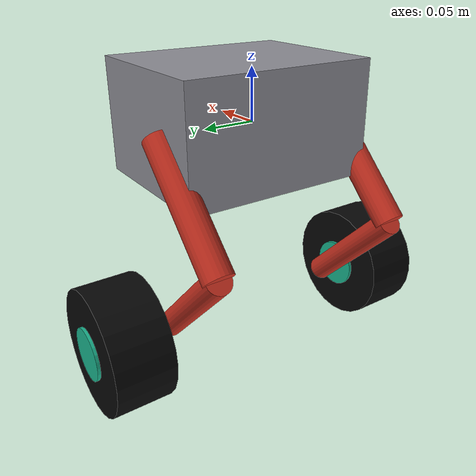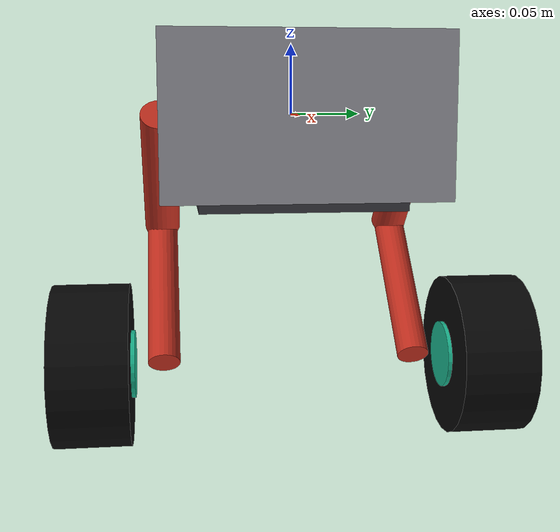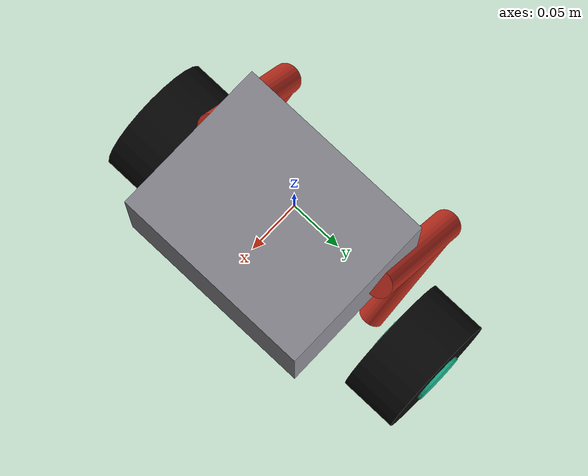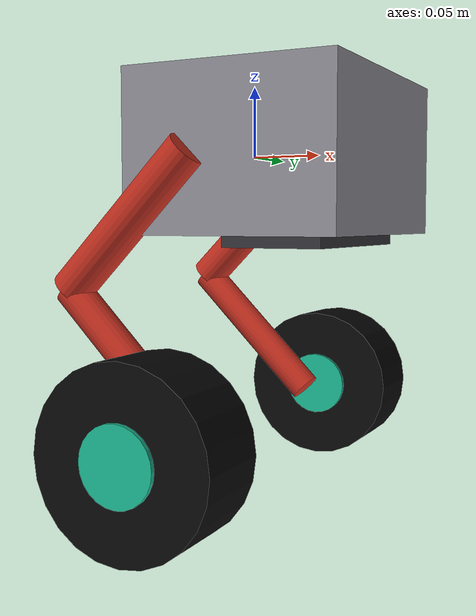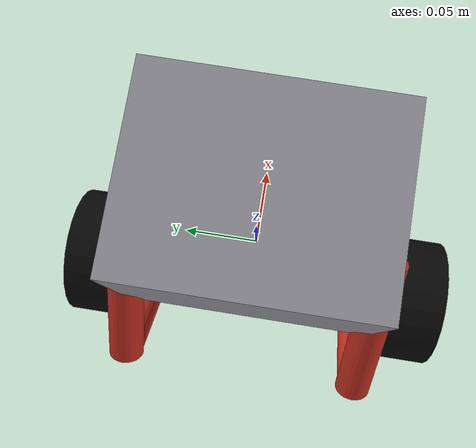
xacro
<?xml version="1.0"?>
<!-- SeBaJu_BOT(II): URDF conversion of SeBaJu_BOT(II).xml (MuJoCo). All frames, masses and joint axes match the MJCF. -->
<robot name="sebaju" xmlns:xacro="http://www.ros.org/wiki/xacro">

  <xacro:arg name="controllers_file" default="$(find sebaju_gazebo)/config/sebaju_controllers.yaml"/>

  <xacro:property name="seg" value="0.0919"/>
  <xacro:property name="leg_seg_length" value="0.13"/>
  <xacro:property name="hip_y" value="0.095"/>
  <xacro:property name="wheel_y" value="0.052"/>
  <xacro:property name="wheel_radius" value="0.06"/>
  <xacro:property name="wheel_length" value="0.056"/>
  <xacro:property name="hub_radius" value="0.025"/>
  <xacro:property name="hub_length" value="0.062"/>

  <xacro:property name="leg_damping" value="0.8"/>
  <xacro:property name="leg_effort" value="60.0"/>
  <!-- MuJoCo wheel motor: gear 18, ctrlrange [-1, 1] -> max 18 Nm -->
  <xacro:property name="wheel_effort" value="18.0"/>

  <material name="torso_mat"><color rgba="0.55 0.55 0.58 1"/></material>
  <material name="ballast_mat"><color rgba="0.20 0.20 0.22 1"/></material>
  <material name="leg_mat"><color rgba="0.75 0.18 0.12 1"/></material>
  <material name="wheel_mat"><color rgba="0.03 0.03 0.03 1"/></material>
  <material name="hub_mat"><color rgba="0.10 0.70 0.55 1"/></material>

  <!-- ===================== Torso ===================== -->
  <link name="base_link">
    <visual>
      <origin xyz="0.025 0 0"/>
      <geometry><box size="0.15 0.19 0.11"/></geometry>
      <material name="torso_mat"/>
    </visual>
    <collision>
      <origin xyz="0.025 0 0"/>
      <geometry><box size="0.15 0.19 0.11"/></geometry>
    </collision>
    <inertial>
      <origin xyz="0.025 0 0"/>
      <mass value="2.50"/>
      <inertia ixx="0.0100417" ixy="0" ixz="0" iyy="0.0072083" iyz="0" izz="0.0122083"/>
    </inertial>
  </link>

  <joint name="ballast_joint" type="fixed">
    <parent link="base_link"/>
    <child link="ballast_link"/>
    <origin xyz="0.045 0 -0.045"/>
  </joint>

  <link name="ballast_link">
    <visual>
      <geometry><box size="0.07 0.14 0.036"/></geometry>
      <material name="ballast_mat"/>
    </visual>
    <collision>
      <geometry><box size="0.07 0.14 0.036"/></geometry>
    </collision>
    <inertial>
      <mass value="0.35"/>
      <inertia ixx="0.00060947" ixy="0" ixz="0" iyy="0.00018072" iyz="0" izz="0.00071458"/>
    </inertial>
  </link>

  <!-- ===================== Legs ===================== -->
  <xacro:macro name="leg" params="side reflect">
    <joint name="${side}_hip" type="revolute">
      <parent link="base_link"/>
      <child link="${side}_thigh_link"/>
      <origin xyz="0 ${reflect*hip_y} 0"/>
      <axis xyz="0 1 0"/>
      <limit lower="-0.9" upper="0.9" effort="${leg_effort}" velocity="100.0"/>
      <dynamics damping="${leg_damping}"/>
    </joint>

    <link name="${side}_thigh_link">
      <visual>
        <origin xyz="${-seg/2} 0 ${-seg/2}" rpy="0 ${-3*pi/4} 0"/>
        <geometry><cylinder radius="0.014" length="${leg_seg_length}"/></geometry>
        <material name="leg_mat"/>
      </visual>
      <collision>
        <origin xyz="${-seg/2} 0 ${-seg/2}" rpy="0 ${-3*pi/4} 0"/>
        <geometry><cylinder radius="0.014" length="${leg_seg_length}"/></geometry>
      </collision>
      <inertial>
        <origin xyz="${-seg/2} 0 ${-seg/2}" rpy="0 ${-3*pi/4} 0"/>
        <mass value="0.18"/>
        <inertia ixx="0.00026232" ixy="0" ixz="0" iyy="0.00026232" iyz="0" izz="0.00001764"/>
      </inertial>
    </link>

    <joint name="${side}_knee" type="revolute">
      <parent link="${side}_thigh_link"/>
      <child link="${side}_shank_link"/>
      <origin xyz="${-seg} 0 ${-seg}"/>
      <axis xyz="0 1 0"/>
      <limit lower="-0.9" upper="0.9" effort="${leg_effort}" velocity="100.0"/>
      <dynamics damping="${leg_damping}"/>
    </joint>

    <link name="${side}_shank_link">
      <visual>
        <origin xyz="${seg/2} 0 ${-seg/2}" rpy="0 ${3*pi/4} 0"/>
        <geometry><cylinder radius="0.012" length="${leg_seg_length}"/></geometry>
        <material name="leg_mat"/>
      </visual>
      <collision>
        <origin xyz="${seg/2} 0 ${-seg/2}" rpy="0 ${3*pi/4} 0"/>
        <geometry><cylinder radius="0.012" length="${leg_seg_length}"/></geometry>
      </collision>
      <inertial>
        <origin xyz="${seg/2} 0 ${-seg/2}" rpy="0 ${3*pi/4} 0"/>
        <mass value="0.16"/>
        <inertia ixx="0.00023109" ixy="0" ixz="0" iyy="0.00023109" iyz="0" izz="0.00001152"/>
      </inertial>
    </link>

    <joint name="${side}_wheel_joint" type="continuous">
      <parent link="${side}_shank_link"/>
      <child link="${side}_wheel_link"/>
      <origin xyz="${seg} ${reflect*wheel_y} ${-seg}"/>
      <axis xyz="0 1 0"/>
      <limit effort="${wheel_effort}" velocity="200.0"/>
      <dynamics damping="0.02"/>
    </joint>

    <link name="${side}_wheel_link">
      <visual>
        <origin rpy="${pi/2} 0 0"/>
        <geometry><cylinder radius="${wheel_radius}" length="${wheel_length}"/></geometry>
        <material name="wheel_mat"/>
      </visual>
      <visual>
        <origin rpy="${pi/2} 0 0"/>
        <geometry><cylinder radius="${hub_radius}" length="${hub_length}"/></geometry>
        <material name="hub_mat"/>
      </visual>
      <collision>
        <origin rpy="${pi/2} 0 0"/>
        <geometry><cylinder radius="${wheel_radius}" length="${wheel_length}"/></geometry>
      </collision>
      <!-- wheel 0.32 kg + hub 0.06 kg; iyy includes the MuJoCo wheel armature (0.002),
           ixx/izz raised so the tensor stays physically valid (ixx + izz >= iyy) -->
      <inertial>
        <mass value="0.38"/>
        <inertia ixx="0.0013" ixy="0" ixz="0" iyy="0.00259475" iyz="0" izz="0.0013"/>
      </inertial>
    </link>

    <gazebo reference="${side}_wheel_link">
      <mu1>2.2</mu1>
      <mu2>2.2</mu2>
      <sensor name="${side}_wheel_contact" type="contact">
        <always_on>true</always_on>
        <update_rate>500</update_rate>
        <contact>
          <collision>${side}_wheel_link_collision</collision>
        </contact>
      </sensor>
    </gazebo>

    <gazebo reference="${side}_thigh_link">
      <mu1>1.8</mu1>
      <mu2>1.8</mu2>
    </gazebo>
    <gazebo reference="${side}_shank_link">
      <mu1>1.8</mu1>
      <mu2>1.8</mu2>
    </gazebo>
  </xacro:macro>

  <xacro:leg side="left" reflect="1"/>
  <xacro:leg side="right" reflect="-1"/>

  <!-- ===================== Sensors ===================== -->
  <gazebo reference="base_link">
    <mu1>1.8</mu1>
    <mu2>1.8</mu2>
    <sensor name="imu_sensor" type="imu">
      <always_on>true</always_on>
      <update_rate>500</update_rate>
      <topic>/sebaju/imu</topic>
    </sensor>
  </gazebo>

  <!-- ===================== ros2_control ===================== -->
  <xacro:macro name="effort_joint" params="name limit">
    <joint name="${name}">
      <command_interface name="effort">
        <param name="min">${-limit}</param>
        <param name="max">${limit}</param>
      </command_interface>
      <state_interface name="position"/>
      <state_interface name="velocity"/>
      <state_interface name="effort"/>
    </joint>
  </xacro:macro>

  <xacro:macro name="state_joint" params="name">
    <joint name="${name}">
      <state_interface name="position"/>
      <state_interface name="velocity"/>
      <state_interface name="effort"/>
    </joint>
  </xacro:macro>

  <ros2_control name="GazeboSimSystem" type="system">
    <hardware>
      <plugin>gz_ros2_control/GazeboSimSystem</plugin>
    </hardware>
    <xacro:state_joint name="left_hip"/>
    <xacro:state_joint name="right_hip"/>
    <xacro:state_joint name="left_knee"/>
    <xacro:state_joint name="right_knee"/>
    <xacro:effort_joint name="left_wheel_joint" limit="${wheel_effort}"/>
    <xacro:effort_joint name="right_wheel_joint" limit="${wheel_effort}"/>
  </ros2_control>

  <!-- MuJoCo position servos: force = clamp(p_gain*e + d_gain*de/dt, cmd_min, cmd_max) every physics step -->
  <xacro:macro name="leg_servo" params="joint kp kv">
    <gazebo>
      <plugin filename="ignition-gazebo-joint-position-controller-system" name="ignition::gazebo::systems::JointPositionController">
        <joint_name>${joint}</joint_name>
        <topic>/sebaju/${joint}/cmd_pos</topic>
        <p_gain>${kp}</p_gain>
        <i_gain>0</i_gain>
        <d_gain>${kv}</d_gain>
        <cmd_max>${leg_effort}</cmd_max>
        <cmd_min>${-leg_effort}</cmd_min>
      </plugin>
    </gazebo>
  </xacro:macro>

  <xacro:leg_servo joint="left_hip" kp="160" kv="12"/>
  <xacro:leg_servo joint="right_hip" kp="160" kv="12"/>
  <xacro:leg_servo joint="left_knee" kp="200" kv="14"/>
  <xacro:leg_servo joint="right_knee" kp="200" kv="14"/>

  <gazebo>
    <plugin filename="gz_ros2_control-system" name="gz_ros2_control::GazeboSimROS2ControlPlugin">
      <parameters>$(arg controllers_file)</parameters>
    </plugin>

    <!-- Ground-truth base pose/twist in the world frame (MuJoCo read these directly from qpos). -->
    <plugin filename="ignition-gazebo-odometry-publisher-system" name="ignition::gazebo::systems::OdometryPublisher">
      <odom_frame>world</odom_frame>
      <robot_base_frame>base_link</robot_base_frame>
      <odom_publish_frequency>500</odom_publish_frequency>
      <odom_topic>/sebaju/odom</odom_topic>
      <tf_topic>/sebaju/odom_tf</tf_topic>
      <dimensions>3</dimensions>
    </plugin>

    <!-- The hold-until-release DetachableJoint lives on the static sebaju_anchor model in sebaju_world.sdf. -->
  </gazebo>
</robot>
